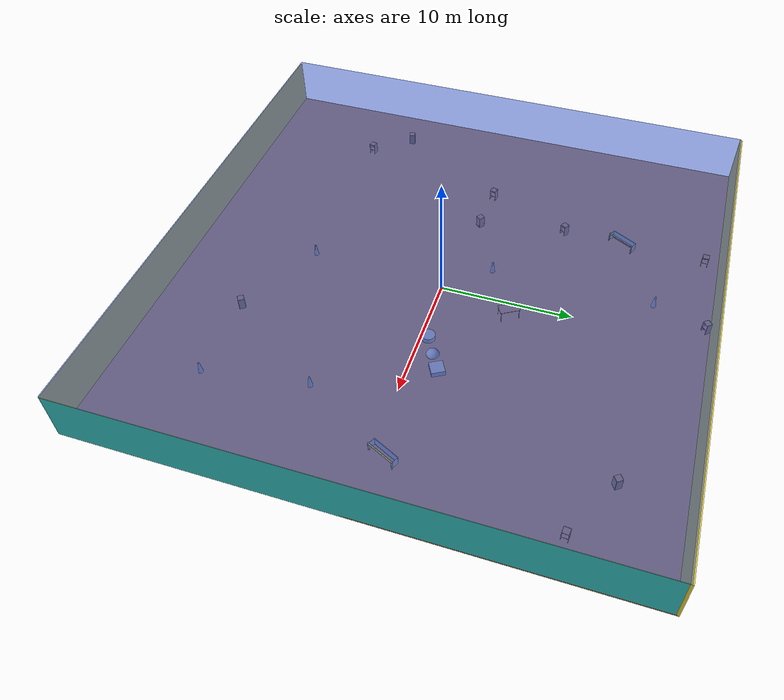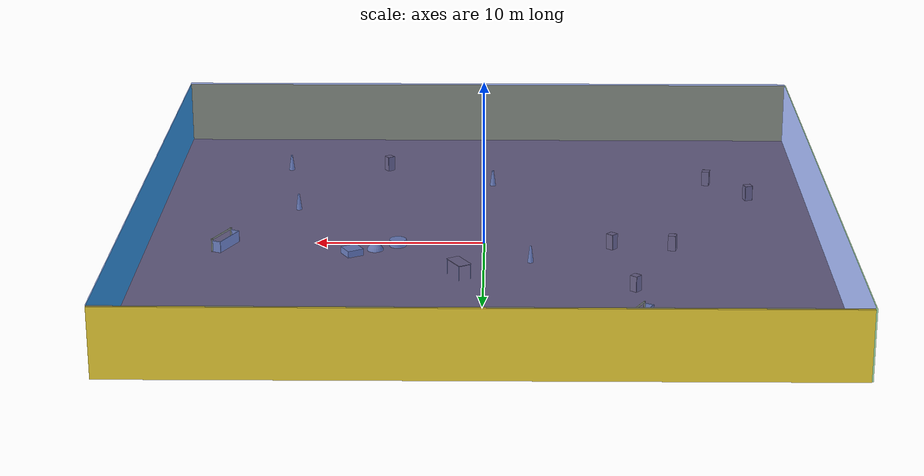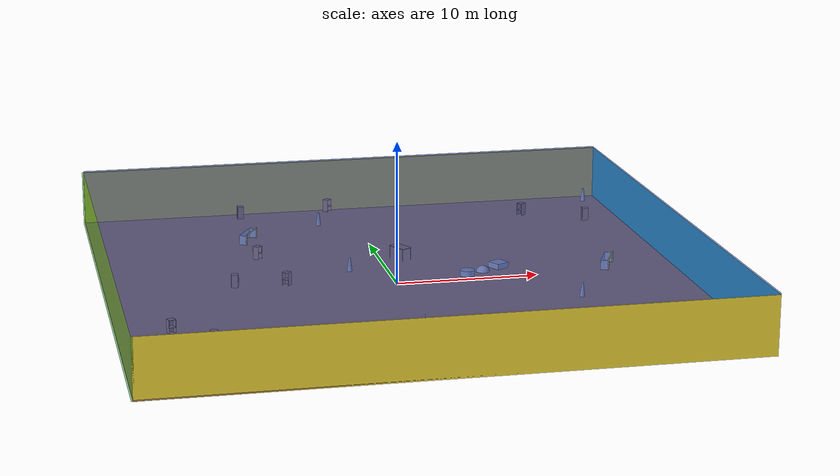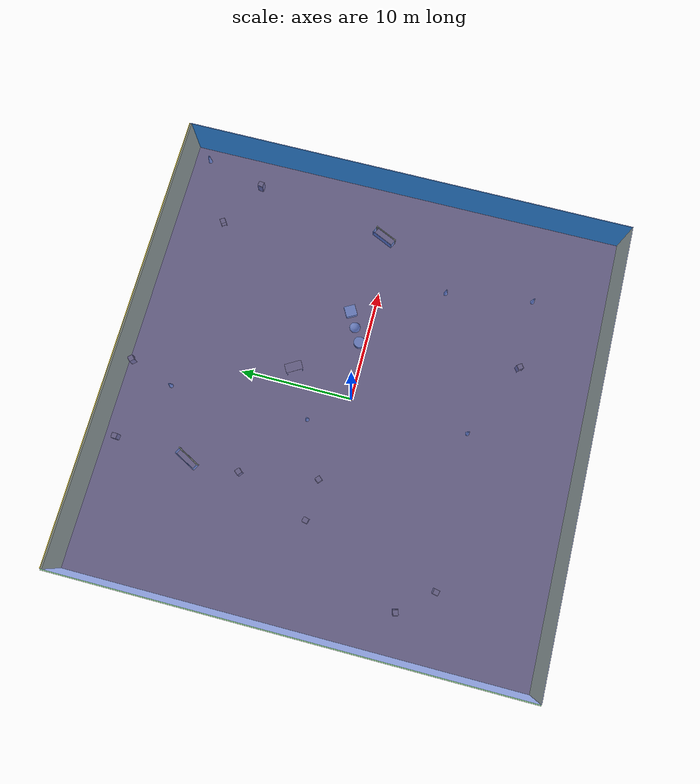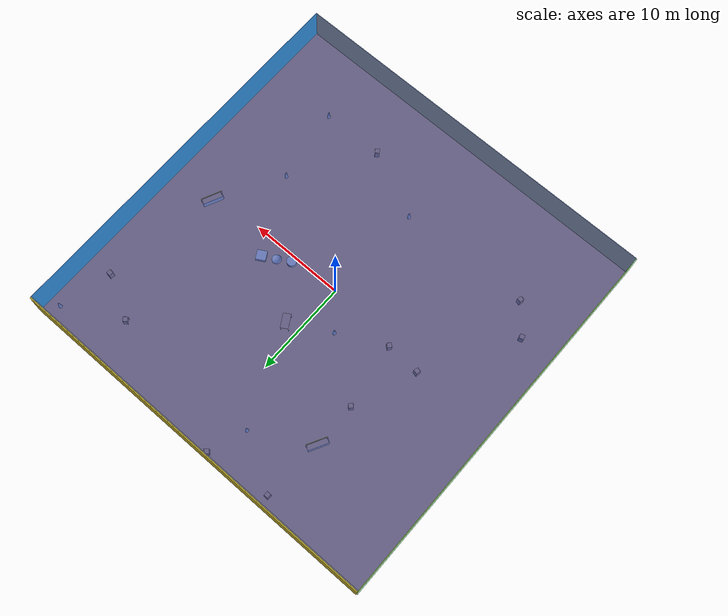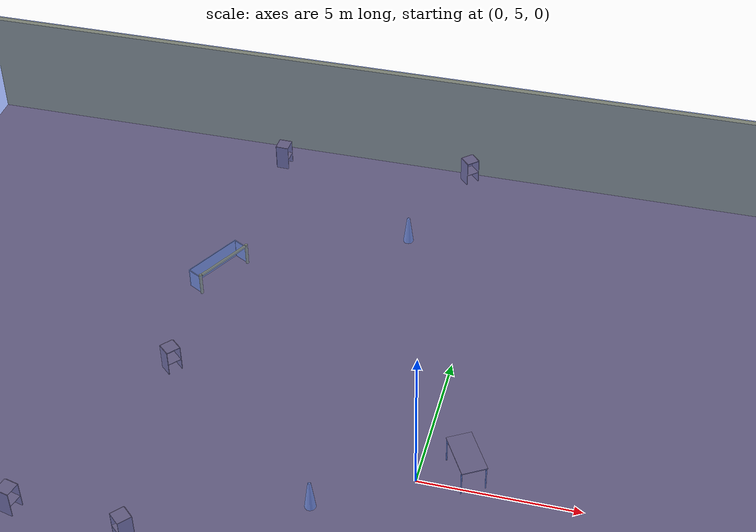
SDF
<sdf version="1.4">
 <world name="default">
  <physics type="ode">
   <max_step_size>0.001</max_step_size>
   <real_time_factor>1</real_time_factor>
   <real_time_update_rate>1000</real_time_update_rate>
   <gravity>0 0 -9.8</gravity>
  </physics>
  <scene><ambient>0.4 0.4 0.4 1</ambient><background>0.7 0.7 0.7 1</background><shadows>1</shadows></scene>
  <model name="Surrounding">
   <static>1</static>
   <link name="Ceiling">
    <collision name="Ceiling_Collision"><geometry><box><size>40 40 0.1</size></box></geometry></collision>
    <visual name="Ceiling_Visual">
     <geometry><box><size>40 40 0.1</size></box></geometry>
     <material>
      <script><uri>file://media/materials/scripts/gazebo.material</uri><name>Gazebo/BlueTransparent</name></script>
     </material>
    </visual>
    <pose>0 0 4.05 0 0 0</pose>
   </link>
   <link name="Wall_South">
    <collision name="Wall_South_Collision">
     <geometry><box><size>40 0 4</size></box></geometry>
     <pose>0 0 2 0 -0 0</pose>
    </collision>
    <visual name="Wall_South_Visual">
     <pose>0 0 2 0 -0 0</pose>
     <geometry><box><size>40 0 4</size></box></geometry>
     <material>
      <script><uri>file://media/materials/scripts/gazebo.material</uri><name>Gazebo/ZincYellow</name></script>
     </material>
    </visual>
    <velocity_decay><linear>0</linear><angular>0</angular></velocity_decay>
    <pose>0 -20 0 0 -0 0</pose>
   </link>
   <link name="Wall_East">
    <collision name="Wall_21_Collision">
     <geometry><box><size>40 0 4</size></box></geometry>
     <pose>0 0 2 0 -0 0</pose>
    </collision>
    <visual name="Wall_21_Visual">
     <pose>0 0 2 0 -0 0</pose>
     <geometry><box><size>40 0 4</size></box></geometry>
     <material>
      <script><uri>file://media/materials/scripts/gazebo.material</uri><name>Gazebo/TurquoiseGlow</name></script>
     </material>
    </visual>
    <velocity_decay><linear>0</linear><angular>0</angular></velocity_decay>
    <pose>20 0 0 0 -0 1.5708</pose>
   </link>
   <link name="Wall_North">
    <collision name="Wall_22_Collision">
     <geometry><box><size>40 0.2 4</size></box></geometry>
     <pose>0 0 2 0 -0 0</pose>
    </collision>
    <visual name="Wall_22_Visual">
     <pose>0 0 2 0 -0 0</pose>
     <geometry><box><size>40 0.2 4</size></box></geometry>
     <material>
      <script><uri>file://media/materials/scripts/gazebo.material</uri><name>Gazebo/ZincYellow</name></script>
     </material>
    </visual>
    <velocity_decay><linear>0</linear><angular>0</angular></velocity_decay>
    <pose>0 20 0 0 -0 0</pose>
   </link>
   <link name="Wall_West">
    <collision name="Wall_23_Collision">
     <geometry><box><size>40 0.2 4</size></box></geometry>
     <pose>0 0 2 0 -0 0</pose>
    </collision>
    <visual name="Wall_23_Visual">
     <pose>0 0 2 0 -0 0</pose>
     <geometry><box><size>40 0.2 4</size></box></geometry>
     <material>
      <script><uri>file://media/materials/scripts/gazebo.material</uri><name>Gazebo/GreenTransparent</name></script>
     </material>
    </visual>
    <velocity_decay><linear>0</linear><angular>0</angular></velocity_decay>
    <pose>-20 0 0 0 0 -1.5708</pose>
   </link>
   <link name="Ground_link">
    <collision name="collision">
     <pose>0 0 .05 0 -0 0</pose>
     <geometry><box><size>40 40 0.1</size></box></geometry>
    </collision>
    <visual name="visual">
     <pose>0 0 .05 0 -0 0</pose>
     <geometry><box><size>40 40 0.1</size></box></geometry>
     <material>
      <script><uri>file://media/materials/scripts/gazebo.material</uri><name>Gazebo/WoodPallet</name></script>
     </material>
    </visual>
   </link>
   <static>1</static>
  </model>
  <spherical_coordinates>
   <surface_model>EARTH_WGS84</surface_model>
   <latitude_deg>0</latitude_deg>
   <longitude_deg>0</longitude_deg>
   <elevation>0</elevation>
   <heading_deg>0</heading_deg>
  </spherical_coordinates>
  <light name="lightball_0" type="diffuse">
   <diffuse>0.8 0.8 0.8 1</diffuse>
   <specular>0.2 0.2 0.2 1</specular>
   <attenuation>
    <range>100</range>
    <constant>0.7</constant>
    <linear>0.01</linear>
    <quadratic>0.001</quadratic>
   </attenuation>
   <direction>-0.5 0.1 -0.9</direction>
   <pose>1.82342390688 11.5099669884 3.57047417847 0 0 0</pose>
  </light>
  <light name="lightball_1" type="diffuse">
   <diffuse>0.8 0.8 0.8 1</diffuse>
   <specular>0.2 0.2 0.2 1</specular>
   <attenuation>
    <range>100</range>
    <constant>0.7</constant>
    <linear>0.01</linear>
    <quadratic>0.001</quadratic>
   </attenuation>
   <direction>-0.5 0.1 -0.9</direction>
   <pose>-6.97802298706 -10.3354213499 2.6878824208 0 0 0</pose>
  </light>
  <light name="lightball_2" type="diffuse">
   <diffuse>0.8 0.8 0.8 1</diffuse>
   <specular>0.2 0.2 0.2 1</specular>
   <attenuation>
    <range>100</range>
    <constant>0.7</constant>
    <linear>0.01</linear>
    <quadratic>0.001</quadratic>
   </attenuation>
   <direction>-0.5 0.1 -0.9</direction>
   <pose>-15.1025544488 -18.0125568689 1.97784980956 0 0 0</pose>
  </light>
  <light name="lightball_3" type="diffuse">
   <diffuse>0.8 0.8 0.8 1</diffuse>
   <specular>0.2 0.2 0.2 1</specular>
   <attenuation>
    <range>100</range>
    <constant>0.7</constant>
    <linear>0.01</linear>
    <quadratic>0.001</quadratic>
   </attenuation>
   <direction>-0.5 0.1 -0.9</direction>
   <pose>-17.6246244437 1.11408893594 2.31015124831 0 0 0</pose>
  </light>
  <light name="lightball_4" type="diffuse">
   <diffuse>0.8 0.8 0.8 1</diffuse>
   <specular>0.2 0.2 0.2 1</specular>
   <attenuation>
    <range>100</range>
    <constant>0.7</constant>
    <linear>0.01</linear>
    <quadratic>0.001</quadratic>
   </attenuation>
   <direction>-0.5 0.1 -0.9</direction>
   <pose>-13.0366222068 16.3498226506 0.55860096182 0 0 0</pose>
  </light>
  <light name="lightball_5" type="diffuse">
   <diffuse>0.8 0.8 0.8 1</diffuse>
   <specular>0.2 0.2 0.2 1</specular>
   <attenuation>
    <range>100</range>
    <constant>0.7</constant>
    <linear>0.01</linear>
    <quadratic>0.001</quadratic>
   </attenuation>
   <direction>-0.5 0.1 -0.9</direction>
   <pose>13.0566510011 -11.4798605188 2.52982255048 0 0 0</pose>
  </light>
  <light name="lightball_6" type="diffuse">
   <diffuse>0.8 0.8 0.8 1</diffuse>
   <specular>0.2 0.2 0.2 1</specular>
   <attenuation>
    <range>100</range>
    <constant>0.7</constant>
    <linear>0.01</linear>
    <quadratic>0.001</quadratic>
   </attenuation>
   <direction>-0.5 0.1 -0.9</direction>
   <pose>-16.4061445279 12.414212707 3.03354161644 0 0 0</pose>
  </light>
  <light name="lightball_7" type="diffuse">
   <diffuse>0.8 0.8 0.8 1</diffuse>
   <specular>0.2 0.2 0.2 1</specular>
   <attenuation>
    <range>100</range>
    <constant>0.7</constant>
    <linear>0.01</linear>
    <quadratic>0.001</quadratic>
   </attenuation>
   <direction>-0.5 0.1 -0.9</direction>
   <pose>-18.357415335 -11.7137991379 2.19521888914 0 0 0</pose>
  </light>
  <light name="lightball_8" type="diffuse">
   <diffuse>0.8 0.8 0.8 1</diffuse>
   <specular>0.2 0.2 0.2 1</specular>
   <attenuation>
    <range>100</range>
    <constant>0.7</constant>
    <linear>0.01</linear>
    <quadratic>0.001</quadratic>
   </attenuation>
   <direction>-0.5 0.1 -0.9</direction>
   <pose>2.04208668348 -14.7948466014 2.09516057621 0 0 0</pose>
  </light>
  <light name="lightball_9" type="diffuse">
   <diffuse>0.8 0.8 0.8 1</diffuse>
   <specular>0.2 0.2 0.2 1</specular>
   <attenuation>
    <range>100</range>
    <constant>0.7</constant>
    <linear>0.01</linear>
    <quadratic>0.001</quadratic>
   </attenuation>
   <direction>-0.5 0.1 -0.9</direction>
   <pose>6.47219638868 12.6019687827 3.30966298014 0 0 0</pose>
  </light>
  <include><uri>model://cabinet</uri><pose>-16.4496375649 -7.9642085392 0 0 0 1.85562253023</pose></include>
  <include><uri>model://cabinet</uri><pose>-14.051237272 -10.7983503775 0 0 0 2.92034655218</pose></include>
  <include><uri>model://cabinet</uri><pose>-11.1117305509 1.10089513221 0 0 0 2.90570824494</pose></include>
  <include><uri>model://cabinet</uri><pose>-7.55527378508 0.915367405829 0 0 0 0.857532350742</pose></include>
  <include><uri>model://cabinet</uri><pose>-8.60727395919 7.66684559406 0 0 0 2.43317856085</pose></include>
  <include>
   <uri>model://robocup_3Dsim_goal</uri>
   <pose>-8.39348257911 12.1980721242 0 0 0 2.6509726429</pose>
  </include>
  <include><uri>model://cabinet</uri><pose>-8.30196963301 18.8147439956 0 0 0 3.10993412221</pose></include>
  <include>
   <uri>model://construction_cone</uri>
   <pose>-2.7276029559 3.25716320843 0 0 0 0.733047071443</pose>
  </include>
  <include>
   <uri>model://construction_cone</uri>
   <pose>-2.80064217708 15.6170811189 0 0 0 2.91116556141</pose>
  </include>
  <include><uri>model://cabinet</uri><pose>-1.43872705526 19.5451963685 0 0 0 2.31347390348</pose></include>
  <include>
   <uri>model://construction_cone</uri>
   <pose>-0.440365559446 -10.5066222269 0 0 0 2.62705171312</pose>
  </include>
  <include><uri>model://table</uri><pose>1.3879923764 5.56263847984 0 0 0 2.10071056465</pose></include>
  <include><uri>model://cabinet</uri><pose>6.31096153494 -13.5948898609 0 0 0 0.623608233898</pose></include>
  <include>
   <uri>model://textured_shapes</uri>
   <pose>6.42222148018 1.32148728648 0 0 0 2.08155505298</pose>
  </include>
  <include>
   <uri>model://construction_cone</uri>
   <pose>12.7051954604 -13.554788968 0 0 0 1.11829051798</pose>
  </include>
  <include>
   <uri>model://construction_cone</uri>
   <pose>11.5558826964 -5.81056844214 0 0 0 0.578131445316</pose>
  </include>
  <include><uri>model://cabinet</uri><pose>12.9670091337 15.4381411525 0 0 0 0.586567705771</pose></include>
  <include>
   <uri>model://robocup_3Dsim_goal</uri>
   <pose>15.5646525734 0.750174950592 0 0 0 2.70728787814</pose>
  </include>
  <include><uri>model://cabinet</uri><pose>17.3535486553 13.079912014 0 0 0 3.03026743007</pose></include>
  <include>
   <uri>model://construction_cone</uri>
   <pose>18.8235869038 18.5253705503 0 0 0 1.36506748741</pose>
  </include>
 </world>
</sdf>

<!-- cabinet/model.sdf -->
<sdf version="1.5">
  <model name="cabinet">
    <static>true</static>
    <link name="cabinet_bottom_plate">
      <inertial>
        <pose>0 0 -1 0 0 0</pose>
        <inertia>
          <ixx>2.050000</ixx>
          <ixy>0</ixy>
          <ixz>0</ixz>
          <iyy>2.050000</iyy>
          <iyz>0</iyz>
          <izz>2.050000</izz>
        </inertia>
        <mass>25.000000</mass>
      </inertial>
      <collision name="cabinet_bottom_plate_geom">
        <pose>0 0 0.010000 0 0 0</pose>
        <geometry>
          <box>
            <size>0.450000 0.450000 0.020000</size>
          </box>
        </geometry>
      </collision>
      <visual name="cabinet_bottom_plate_geom_visual">
        <pose>0 0 0.010000 0 0 0</pose>
        <geometry>
          <box>
            <size>0.450000 0.450000 0.020000</size>
          </box>
        </geometry>
        <material>
          <script>
            <uri>model://media/materials/scripts/gazebo.material</uri>
            <name>Gazebo/Wood</name>
          </script>
        </material>
      </visual>
      <collision name="cabinet_bottom_plate_geom_cabinet_back_plate">
        <pose>0.235000 0 0.510000 0 0 0</pose>
        <geometry>
          <box>
            <size>0.020000 0.450000 1.020000</size>
          </box>
        </geometry>
      </collision>
      <visual name="cabinet_bottom_plate_geom_cabinet_back_plate_visual">
        <pose>0.235000 0 0.510000 0 0 0</pose>
        <geometry>
          <box>
            <size>0.020000 0.450000 1.020000</size>
          </box>
        </geometry>
        <material>
          <script>
            <uri>model://media/materials/scripts/gazebo.material</uri>
            <name>Gazebo/Wood</name>
          </script>
        </material>
      </visual>
      <collision name="cabinet_bottom_plate_geom_cabinet_left_plate">
        <pose>0 0.235000 0.510000 0 0 0</pose>
        <geometry>
          <box>
            <size>0.450000 0.020000 1.020000</size>
          </box>
        </geometry>
      </collision>
      <visual name="cabinet_bottom_plate_geom_cabinet_left_plate_visual">
        <pose>0 0.235000 0.510000 0 0 0</pose>
        <geometry>
          <box>
            <size>0.450000 0.020000 1.020000</size>
          </box>
        </geometry>
        <material>
          <script>
            <uri>model://media/materials/scripts/gazebo.material</uri>
            <name>Gazebo/Wood</name>
          </script>
        </material>
      </visual>
      <collision name="cabinet_bottom_plate_geom_cabinet_middle_plate">
        <pose>0 0 0.510000 0 0 0</pose>
        <geometry>
          <box>
            <size>0.450000 0.450000 0.020000</size>
          </box>
        </geometry>
      </collision>
      <visual name="cabinet_bottom_plate_geom_cabinet_middle_plate_visual">
        <pose>0 0 0.510000 0 0 0</pose>
        <geometry>
          <box>
            <size>0.450000 0.450000 0.020000</size>
          </box>
        </geometry>
        <material>
          <script>
            <uri>model://media/materials/scripts/gazebo.material</uri>
            <name>Gazebo/Wood</name>
          </script>
        </material>
      </visual>
      <collision name="cabinet_bottom_plate_geom_cabinet_right_plate">
        <pose>0 -0.235000 0.510000 0 0 0</pose>
        <geometry>
          <box>
            <size>0.450000 0.020000 1.020000</size>
          </box>
        </geometry>
      </collision>
      <visual name="cabinet_bottom_plate_geom_cabinet_right_plate_visual">
        <pose>0 -0.235000 0.510000 0 0 0</pose>
        <geometry>
          <box>
            <size>0.450000 0.020000 1.020000</size>
          </box>
        </geometry>
        <material>
          <script>
            <uri>model://media/materials/scripts/gazebo.material</uri>
            <name>Gazebo/Wood</name>
          </script>
        </material>
      </visual>
      <collision name="cabinet_bottom_plate_geom_cabinet_top_plate">
        <pose>0 0 1.010000 0 0 0</pose>
        <geometry>
          <box>
            <size>0.450000 0.450000 0.020000</size>
          </box>
        </geometry>
      </collision>
      <visual name="cabinet_bottom_plate_geom_cabinet_top_plate_visual">
        <pose>0 0 1.010000 0 0 0</pose>
        <geometry>
          <box>
            <size>0.450000 0.450000 0.020000</size>
          </box>
        </geometry>
        <material>
          <script>
            <uri>model://media/materials/scripts/gazebo.material</uri>
            <name>Gazebo/Wood</name>
          </script>
        </material>
      </visual>
    </link>
  </model>
</sdf>

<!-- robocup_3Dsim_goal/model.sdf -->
<sdf version="1.5">
  <model name="robocup_3d_goal">
    <static>true</static>
    <link name="left_post">
      <pose>0 1.05 0.45 0 0 0</pose>
      <collision name="collision">
        <geometry>
          <cylinder>
            <radius>0.05</radius>
            <length>0.9</length>
          </cylinder>
        </geometry>
      </collision>
      <visual name="visual">
        <geometry>
          <cylinder>
            <radius>0.05</radius>
            <length>0.9</length>
          </cylinder>
        </geometry>
        <material>
          <script>
            <uri>file://media/materials/scripts/gazebo.material</uri>
            <name>Gazebo/ZincYellow</name>
          </script>
        </material>
      </visual>
    </link>
    <link name="left_support_horiz_lower">
      <pose>0.30 1.05 0.01 0 0 0</pose>
      <collision name="collision">
        <geometry>
          <box>
            <size>0.50 0.02 0.02</size>
          </box>
        </geometry>
      </collision>
      <visual name="visual">
        <geometry>
          <box>
            <size>0.50 0.02 0.02</size>
          </box>
        </geometry>
        <material>
          <script>
            <uri>file://media/materials/scripts/gazebo.material</uri>
            <name>Gazebo/White</name>
          </script>
        </material>
      </visual>
    </link>
    <link name="left_support_horiz_upper">
      <pose>0.30 1.05 0.79 0 0 0</pose>
      <collision name="collision">
        <geometry>
          <box>
            <size>0.50 0.02 0.02</size>
          </box>
        </geometry>
      </collision>
      <visual name="visual">
        <geometry>
          <box>
            <size>0.50 0.02 0.02</size>
          </box>
        </geometry>
        <material>
          <script>
            <uri>file://media/materials/scripts/gazebo.material</uri>
            <name>Gazebo/White</name>
          </script>
        </material>
      </visual>
    </link>
    <link name="left_support_vertical">
      <pose>0.56 1.05 0.4 0 1.5708 0</pose>
      <collision name="collision">
        <geometry>
          <box>
            <size>0.80 0.02 0.02</size>
          </box>
        </geometry>
      </collision>
      <visual name="visual">
        <geometry>
          <box>
            <size>0.80 0.02 0.02</size>
          </box>
        </geometry>
        <material>
          <script>
            <uri>file://media/materials/scripts/gazebo.material</uri>
            <name>Gazebo/White</name>
          </script>
        </material>
      </visual>
    </link>
    <link name="right_support_horiz_lower">
      <pose>0.30 -1.05 0.01 0 0 0</pose>
      <collision name="collision">
        <geometry>
          <box>
            <size>0.50 0.02 0.02</size>
          </box>
        </geometry>
      </collision>
      <visual name="visual">
        <geometry>
          <box>
            <size>0.50 0.02 0.02</size>
          </box>
        </geometry>
        <material>
          <script>
            <uri>file://media/materials/scripts/gazebo.material</uri>
            <name>Gazebo/White</name>
          </script>
        </material>
      </visual>
    </link>
    <link name="right_support_horiz_upper">
      <pose>0.30 -1.05 0.79 0 0 0</pose>
      <collision name="collision">
        <geometry>
          <box>
            <size>0.50 0.02 0.02</size>
          </box>
        </geometry>
      </collision>
      <visual name="visual">
        <geometry>
          <box>
            <size>0.50 0.02 0.02</size>
          </box>
        </geometry>
        <material>
          <script>
            <uri>file://media/materials/scripts/gazebo.material</uri>
            <name>Gazebo/White</name>
          </script>
        </material>
      </visual>
    </link>
    <link name="right_support_vertical">
      <pose>0.56 -1.05 0.4 0 1.5708 0</pose>
      <collision name="collision">
        <geometry>
          <box>
            <size>0.80 0.02 0.02</size>
          </box>
        </geometry>
      </collision>
      <visual name="visual">
        <geometry>
          <box>
            <size>0.80 0.02 0.02</size>
          </box>
        </geometry>
        <material>
          <script>
            <uri>file://media/materials/scripts/gazebo.material</uri>
            <name>Gazebo/White</name>
          </script>
        </material>
      </visual>
    </link>
    <link name="center_support_horiz_lower">
      <pose>0.56 0 0.01 0 1.5708 0</pose>
      <collision name="collision">
        <geometry>
          <box>
            <size>0.02 2.08 0.02</size>
          </box>
        </geometry>
      </collision>
      <visual name="visual">
        <geometry>
          <box>
            <size>0.02 2.08 0.02</size>
          </box>
        </geometry>
        <material>
          <script>
            <uri>file://media/materials/scripts/gazebo.material</uri>
            <name>Gazebo/White</name>
          </script>
        </material>
      </visual>
    </link>
    <link name="center_support_horiz_upper">
      <pose>0.56 0 0.79 0 1.5708 0</pose>
      <collision name="collision">
        <geometry>
          <box>
            <size>0.02 2.08 0.02</size>
          </box>
        </geometry>
      </collision>
      <visual name="visual">
        <geometry>
          <box>
            <size>0.02 2.08 0.02</size>
          </box>
        </geometry>
        <material>
          <script>
            <uri>file://media/materials/scripts/gazebo.material</uri>
            <name>Gazebo/White</name>
          </script>
        </material>
      </visual>
    </link>
    <link name="right_post">
      <pose>0 -1.05 0.45 0 0 0</pose>
      <collision name="collision">
        <geometry>
          <cylinder>
            <radius>0.05</radius>
            <length>0.9</length>
          </cylinder>
        </geometry>
      </collision>
      <visual name="visual">
        <geometry>
          <cylinder>
            <radius>0.05</radius>
            <length>0.9</length>
          </cylinder>
        </geometry>
        <material>
          <script>
            <uri>file://media/materials/scripts/gazebo.material</uri>
            <name>Gazebo/ZincYellow</name>
          </script>
        </material>
      </visual>
    </link>
    <link name="crossbar">
      <pose>0 0 0.85 1.57 1.57 0</pose>
      <collision name="collision">
        <geometry>
          <cylinder>
            <radius>0.05</radius>
            <length>2.0</length>
          </cylinder>
        </geometry>
      </collision>
      <visual name="visual">
        <geometry>
          <cylinder>
            <radius>0.05</radius>
            <length>2.0</length>
          </cylinder>
        </geometry>
        <material>
          <script>
            <uri>file://media/materials/scripts/gazebo.material</uri>
            <name>Gazebo/ZincYellow</name>
          </script>
        </material>
      </visual>
    </link>
    <link name="center_net">
      <pose>0.56 0 0.40 0 0 0</pose>
      <collision name="collision">
        <geometry>
          <box>
            <size>0.01 2.1 0.80</size>
          </box>
        </geometry>
      </collision>
      <visual name="visual">
        <geometry>
          <box>
            <size>0.01 2.1 0.80</size>
          </box>
        </geometry>
        <material>
          <script>
            <uri>model://../model_source/models/robocup09_spl_field/materials/scripts/</uri>
            <uri>model://../model_source/models/robocup09_spl_field/materials/textures/</uri>
            <name>RoboCup/Net</name>
          </script>
        </material>
      </visual>
    </link>
    <link name="left_net">
      <pose>0.30 1.05 0.40 0 0 0</pose>
      <collision name="collision">
        <geometry>
          <box>
            <size>0.50 0.01 0.76</size>
          </box>
        </geometry>
      </collision>
      <visual name="visual">
        <geometry>
          <box>
            <size>0.50 0.01 0.76</size>
          </box>
        </geometry>
        <material>
          <script>
            <uri>model://../model_source/models/robocup09_spl_field/materials/scripts/</uri>
            <uri>model://../model_source/models/robocup09_spl_field/materials/textures/</uri>
            <name>RoboCup/Net</name>
          </script>
        </material>
      </visual>
    </link>
    <link name="right_net">
      <pose>0.30 -1.05 0.40 0 0 0</pose>
      <collision name="collision">
        <geometry>
          <box>
            <size>0.50 0.01 0.76</size>
          </box>
        </geometry>
      </collision>
      <visual name="visual">
        <geometry>
          <box>
            <size>0.50 0.01 0.76</size>
          </box>
        </geometry>
        <material>
          <script>
            <uri>model://../model_source/models/robocup09_spl_field/materials/scripts/</uri>
            <uri>model://../model_source/models/robocup09_spl_field/materials/textures/</uri>
            <name>RoboCup/Net</name>
          </script>
        </material>
      </visual>
    </link>
  </model>
</sdf>

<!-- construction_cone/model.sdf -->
<sdf version="1.5">
  <model name="Construction Cone">
    <link name="link">
      <collision name="collision">
        <geometry>
          <mesh>
            <scale>10 10 10</scale>
            <uri>file://isr-testbed/construction_cone/meshes/construction_cone.dae</uri>
          </mesh>
        </geometry>
      </collision>
      <visual name="visual">
        <geometry>
          <mesh>
            <scale>10 10 10</scale>
            <uri>file://isr-testbed/construction_cone/meshes/construction_cone.dae</uri>
          </mesh>
        </geometry>
      </visual>
    </link>
  </model>
</sdf>

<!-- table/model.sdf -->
<sdf version="1.5">
  <model name="table">
    <static>true</static>
    <link name="link">
      <collision name="surface">
        <pose>0 0 1.0 0 0 0</pose>
        <geometry>
          <box>
            <size>1.5 0.8 0.03</size>
          </box>
        </geometry>
        <surface>
          <friction>
            <ode>
              <mu>0.6</mu>
              <mu2>0.6</mu2>
            </ode>
          </friction>
        </surface>
      </collision>
      <visual name="visual1">
        <pose>0 0 1.0 0 0 0</pose>
        <geometry>
          <box>
            <size>1.5 0.8 0.03</size>
          </box>
        </geometry>
        <material>
          <script>
            <uri>model://media/materials/scripts/gazebo.material</uri>
            <name>Gazebo/Wood</name>
          </script>
        </material>
      </visual>
      <collision name="front_left_leg">
        <pose>0.68 0.38 0.5 0 0 0</pose>
        <geometry>
          <cylinder>
            <radius>0.02</radius>
            <length>1.0</length>
          </cylinder>
        </geometry>
      </collision>
      <visual name="front_left_leg">
        <pose>0.68 0.38 0.5 0 0 0</pose>
        <geometry>
          <cylinder>
            <radius>0.02</radius>
            <length>1.0</length>
          </cylinder>
        </geometry>
        <material>
          <script>
            <uri>model://media/materials/scripts/gazebo.material</uri>
            <name>Gazebo/Grey</name>
          </script>
        </material>
      </visual>
      <collision name="front_right_leg">
        <pose>0.68 -0.38 0.5 0 0 0</pose>
        <geometry>
          <cylinder>
            <radius>0.02</radius>
            <length>1.0</length>
          </cylinder>
        </geometry>
      </collision>
      <visual name="front_right_leg">
        <pose>0.68 -0.38 0.5 0 0 0</pose>
        <geometry>
          <cylinder>
            <radius>0.02</radius>
            <length>1.0</length>
          </cylinder>
        </geometry>
        <material>
          <script>
            <uri>model://media/materials/scripts/gazebo.material</uri>
            <name>Gazebo/Grey</name>
          </script>
        </material>
      </visual>
      <collision name="back_right_leg">
        <pose>-0.68 -0.38 0.5 0 0 0</pose>
        <geometry>
          <cylinder>
            <radius>0.02</radius>
            <length>1.0</length>
          </cylinder>
        </geometry>
      </collision>
      <visual name="back_right_leg">
        <pose>-0.68 -0.38 0.5 0 0 0</pose>
        <geometry>
          <cylinder>
            <radius>0.02</radius>
            <length>1.0</length>
          </cylinder>
        </geometry>
        <material>
          <script>
            <uri>model://media/materials/scripts/gazebo.material</uri>
            <name>Gazebo/Grey</name>
          </script>
        </material>
      </visual>
      <collision name="back_left_leg">
        <pose>-0.68 0.38 0.5 0 0 0</pose>
        <geometry>
          <cylinder>
            <radius>0.02</radius>
            <length>1.0</length>
          </cylinder>
        </geometry>
      </collision>
      <visual name="back_left_leg">
        <pose>-0.68 0.38 0.5 0 0 0</pose>
        <geometry>
          <cylinder>
            <radius>0.02</radius>
            <length>1.0</length>
          </cylinder>
        </geometry>
        <material>
          <script>
            <uri>model://media/materials/scripts/gazebo.material</uri>
            <name>Gazebo/Grey</name>
          </script>
        </material>
      </visual>
    </link>
  </model>
</sdf>

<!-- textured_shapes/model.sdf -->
<sdf version="1.6">
  <model name="textured_shapes">
    <pose>0 0 0.5 0 0 0</pose>
    <link name="box">
      <pose>0 -1.5 0 0 0 0</pose>
      <collision name="collision">
        <geometry>
          <box>
            <size>1 1 1</size>
          </box>
        </geometry>
      </collision>
      <visual name="visual">
        <geometry>
          <box>
            <size>1 1 1</size>
          </box>
        </geometry>
        <material>
          <script>
            <uri>model://../model_source/models/textured_shapes/materials/scripts</uri>
            <uri>model://../model_source/models/textured_shapes/materials/textures</uri>
            <name>TexturedShape/Squares</name>
          </script>
        </material>
      </visual>
    </link>
    <link name="sphere">
      <collision name="collision">
        <geometry>
          <sphere>
            <radius>0.5</radius>
          </sphere>
        </geometry>
      </collision>
      <visual name="visual">
        <geometry>
          <sphere>
            <radius>0.5</radius>
          </sphere>
        </geometry>
        <material>
          <script>
            <uri>model://../model_source/models/textured_shapes/materials/scripts</uri>
            <uri>model://../model_source/models/textured_shapes/materials/textures</uri>
            <name>TexturedShape/Squares</name>
          </script>
        </material>
      </visual>
    </link>
    <link name="cylinder">
      <pose>0 1.5 0 0 0 0</pose>
      <collision name="collision">
        <geometry>
          <cylinder>
            <radius>0.5</radius>
            <length>1</length>
          </cylinder>
        </geometry>
      </collision>
      <visual name="visual">
        <geometry>
          <cylinder>
            <radius>0.5</radius>
            <length>1</length>
          </cylinder>
        </geometry>
        <material>
          <script>
            <uri>model://../model_source/models/textured_shapes/materials/scripts</uri>
            <uri>model://../model_source/models/textured_shapes/materials/textures</uri>
            <name>TexturedShape/Squares</name>
          </script>
        </material>
      </visual>
    </link>
  </model>
</sdf>
